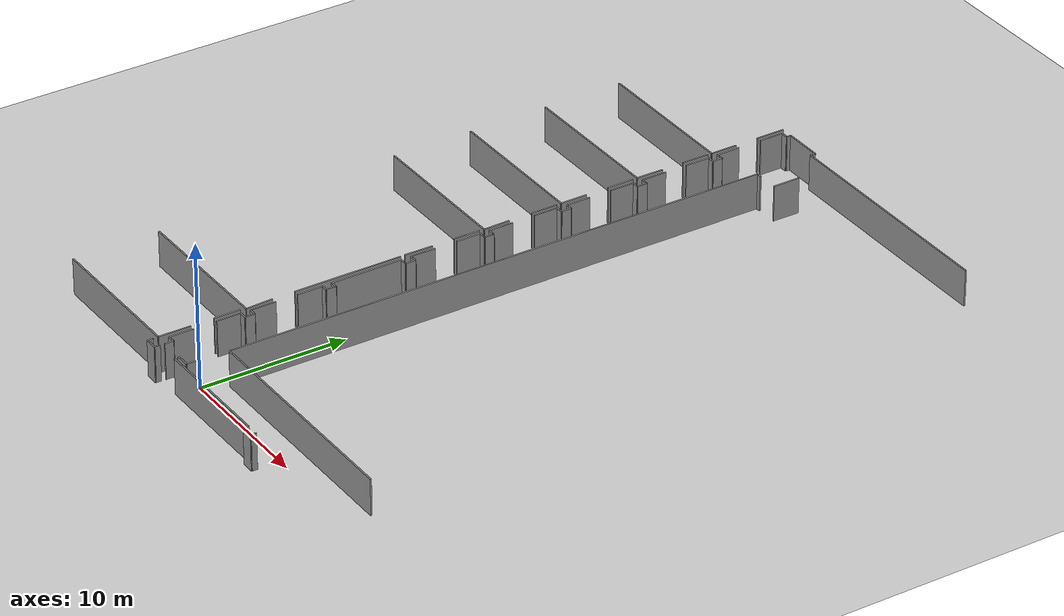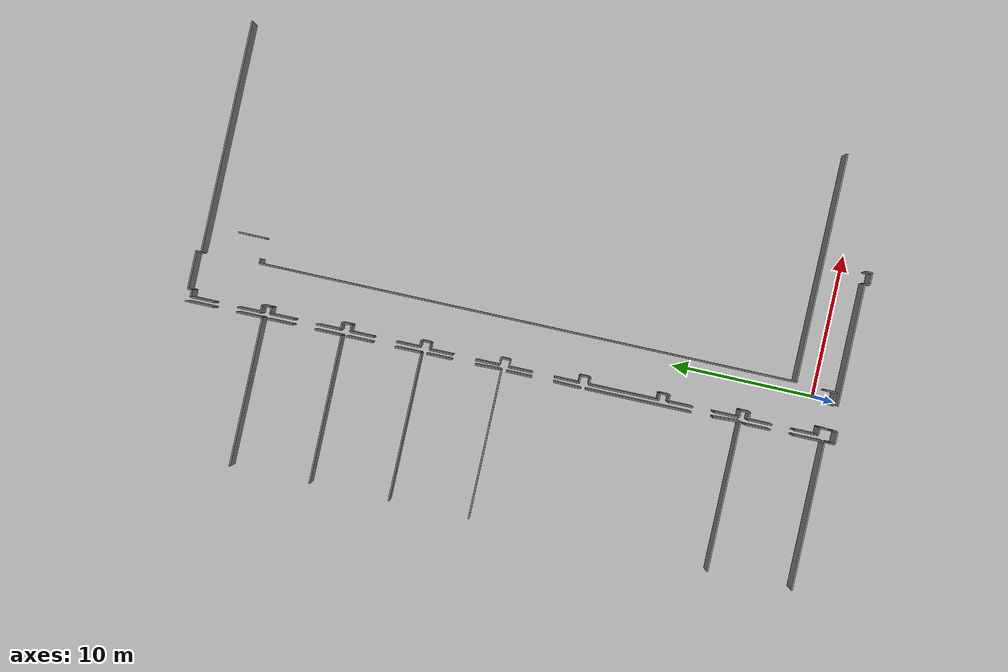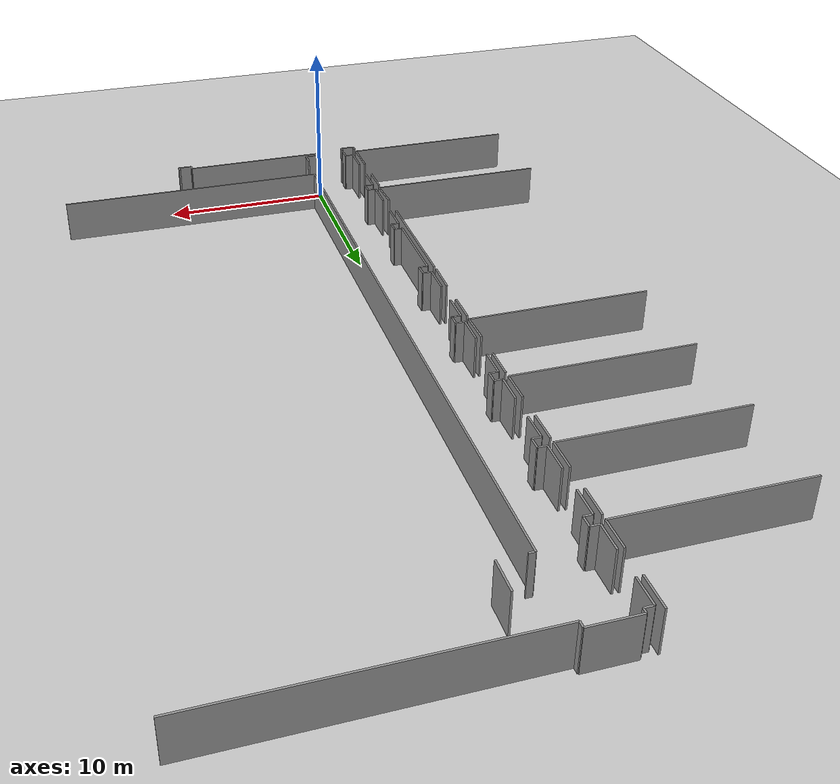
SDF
<sdf version="1.6">
 <world name="default">
  <model name="ground_plane">
   <static>1</static>
   <link name="link">
    <collision name="collision">
     <geometry><plane><normal>0 0 1</normal><size>100 100</size></plane></geometry>
     <surface><friction><ode><mu>100</mu><mu2>50</mu2></ode></friction></surface>
    </collision>
    <visual name="visual">
     <cast_shadows>0</cast_shadows>
     <geometry><plane><normal>0 0 1</normal><size>100 100</size></plane></geometry>
     <material>
      <script><uri>file://media/materials/scripts/gazebo.material</uri><name>Gazebo/Grey</name></script>
     </material>
    </visual>
   </link>
  </model>
  <model name="50015848">
   <static>1</static>
   <link name="Wall_527">
    <collision name="Wall_527_Collision">
     <geometry><box><size>0.373487938395 0.1 2.5</size></box></geometry>
     <pose>0.186743969197 0 1.25 0 0 0</pose>
    </collision>
    <visual name="Wall_527_Visual">
     <pose>0.186743969197 0 1.25 0 0 0</pose>
     <geometry><box><size>0.373487938395 0.1 2.5</size></box></geometry>
     <material>
      <script><uri>file://media/materials/scripts/gazebo.material</uri><name>Gazebo/Grey</name></script>
      <ambient>1 1 1 1</ambient>
     </material>
    </visual>
    <pose>128.944934633 -45.2679052833 0 0 0 -1.57079632679</pose>
   </link>
   <link name="Wall_528">
    <collision name="Wall_528_Collision">
     <geometry><box><size>0.844661241112 0.1 2.5</size></box></geometry>
     <pose>0.422330620556 0 1.25 0 0 0</pose>
    </collision>
    <visual name="Wall_528_Visual">
     <pose>0.422330620556 0 1.25 0 0 0</pose>
     <geometry><box><size>0.844661241112 0.1 2.5</size></box></geometry>
     <material>
      <script><uri>file://media/materials/scripts/gazebo.material</uri><name>Gazebo/Grey</name></script>
      <ambient>1 1 1 1</ambient>
     </material>
    </visual>
    <pose>128.944934633 -45.6413932217 0 0 0 0.0</pose>
   </link>
   <link name="Wall_529">
    <collision name="Wall_529_Collision">
     <geometry><box><size>0.362070168539 0.1 2.5</size></box></geometry>
     <pose>0.181035084269 0 1.25 0 0 0</pose>
    </collision>
    <visual name="Wall_529_Visual">
     <pose>0.181035084269 0 1.25 0 0 0</pose>
     <geometry><box><size>0.362070168539 0.1 2.5</size></box></geometry>
     <material>
      <script><uri>file://media/materials/scripts/gazebo.material</uri><name>Gazebo/Grey</name></script>
      <ambient>1 1 1 1</ambient>
     </material>
    </visual>
    <pose>129.789595874 -45.6413932217 0 0 0 1.57079632679</pose>
   </link>
   <link name="Wall_530">
    <collision name="Wall_530_Collision">
     <geometry><box><size>8.60849101485 0.1 2.5</size></box></geometry>
     <pose>4.30424550742 0 1.25 0 0 0</pose>
    </collision>
    <visual name="Wall_530_Visual">
     <pose>4.30424550742 0 1.25 0 0 0</pose>
     <geometry><box><size>8.60849101485 0.1 2.5</size></box></geometry>
     <material>
      <script><uri>file://media/materials/scripts/gazebo.material</uri><name>Gazebo/Grey</name></script>
      <ambient>1 1 1 1</ambient>
     </material>
    </visual>
    <pose>131.539305673 -45.2793230531 0 0 0 0.0</pose>
   </link>
   <link name="Wall_531">
    <collision name="Wall_531_Collision">
     <geometry><box><size>0.338980900608 0.1 2.5</size></box></geometry>
     <pose>0.169490450304 0 1.25 0 0 0</pose>
    </collision>
    <visual name="Wall_531_Visual">
     <pose>0.169490450304 0 1.25 0 0 0</pose>
     <geometry><box><size>0.338980900608 0.1 2.5</size></box></geometry>
     <material>
      <script><uri>file://media/materials/scripts/gazebo.material</uri><name>Gazebo/Grey</name></script>
      <ambient>1 1 1 1</ambient>
     </material>
    </visual>
    <pose>140.147796688 -45.2793230531 0 0 0 -1.57079632679</pose>
   </link>
   <link name="Wall_532">
    <collision name="Wall_532_Collision">
     <geometry><box><size>0.817512321677 0.1 2.5</size></box></geometry>
     <pose>0.408756160838 0 1.25 0 0 0</pose>
    </collision>
    <visual name="Wall_532_Visual">
     <pose>0.408756160838 0 1.25 0 0 0</pose>
     <geometry><box><size>0.817512321677 0.1 2.5</size></box></geometry>
     <material>
      <script><uri>file://media/materials/scripts/gazebo.material</uri><name>Gazebo/Grey</name></script>
      <ambient>1 1 1 1</ambient>
     </material>
    </visual>
    <pose>140.147796688 -45.6183039537 0 0 0 0.0</pose>
   </link>
   <link name="Wall_533">
    <collision name="Wall_533_Collision">
     <geometry><box><size>0.367144732919 0.1 2.5</size></box></geometry>
     <pose>0.18357236646 0 1.25 0 0 0</pose>
    </collision>
    <visual name="Wall_533_Visual">
     <pose>0.18357236646 0 1.25 0 0 0</pose>
     <geometry><box><size>0.367144732919 0.1 2.5</size></box></geometry>
     <material>
      <script><uri>file://media/materials/scripts/gazebo.material</uri><name>Gazebo/Grey</name></script>
      <ambient>1 1 1 1</ambient>
     </material>
    </visual>
    <pose>140.965309009 -45.6183039537 0 0 0 1.57079632679</pose>
   </link>
   <link name="Wall_658">
    <collision name="Wall_658_Collision">
     <geometry><box><size>0.71323002366 0.1 2.5</size></box></geometry>
     <pose>0.35661501183 0 1.25 0 0 0</pose>
    </collision>
    <visual name="Wall_658_Visual">
     <pose>0.35661501183 0 1.25 0 0 0</pose>
     <geometry><box><size>0.71323002366 0.1 2.5</size></box></geometry>
     <material>
      <script><uri>file://media/materials/scripts/gazebo.material</uri><name>Gazebo/Grey</name></script>
      <ambient>1 1 1 1</ambient>
     </material>
    </visual>
    <pose>132.421264962 -44.268977285 0 0 0 -1.57079632679</pose>
   </link>
   <link name="Wall_659">
    <collision name="Wall_659_Collision">
     <geometry><box><size>0.944376431186 0.1 2.5</size></box></geometry>
     <pose>0.472188215593 0 1.25 0 0 0</pose>
    </collision>
    <visual name="Wall_659_Visual">
     <pose>0.472188215593 0 1.25 0 0 0</pose>
     <geometry><box><size>0.944376431186 0.1 2.5</size></box></geometry>
     <material>
      <script><uri>file://media/materials/scripts/gazebo.material</uri><name>Gazebo/Grey</name></script>
      <ambient>1 1 1 1</ambient>
     </material>
    </visual>
    <pose>132.421264962 -44.9822073086 0 0 0 3.14159265359</pose>
   </link>
   <link name="Wall_660">
    <collision name="Wall_660_Collision">
     <geometry><box><size>0.591440478531 0.1 2.5</size></box></geometry>
     <pose>0.295720239266 0 1.25 0 0 0</pose>
    </collision>
    <visual name="Wall_660_Visual">
     <pose>0.295720239266 0 1.25 0 0 0</pose>
     <geometry><box><size>0.591440478531 0.1 2.5</size></box></geometry>
     <material>
      <script><uri>file://media/materials/scripts/gazebo.material</uri><name>Gazebo/Grey</name></script>
      <ambient>1 1 1 1</ambient>
     </material>
    </visual>
    <pose>129.822326815 -44.9822073086 0 0 0 1.57079632679</pose>
   </link>
   <link name="Wall_661">
    <collision name="Wall_661_Collision">
     <geometry><box><size>0.515575741045 0.1 2.5</size></box></geometry>
     <pose>0.257787870522 0 1.25 0 0 0</pose>
    </collision>
    <visual name="Wall_661_Visual">
     <pose>0.257787870522 0 1.25 0 0 0</pose>
     <geometry><box><size>0.515575741045 0.1 2.5</size></box></geometry>
     <material>
      <script><uri>file://media/materials/scripts/gazebo.material</uri><name>Gazebo/Grey</name></script>
      <ambient>1 1 1 1</ambient>
     </material>
    </visual>
    <pose>129.822326815 -44.3907668301 0 0 0 3.14159265359</pose>
   </link>
   <link name="Wall_662">
    <collision name="Wall_662_Collision">
     <geometry><box><size>1.64542750033 0.1 2.5</size></box></geometry>
     <pose>0.822713750167 0 1.25 0 0 0</pose>
    </collision>
    <visual name="Wall_662_Visual">
     <pose>0.822713750167 0 1.25 0 0 0</pose>
     <geometry><box><size>1.64542750033 0.1 2.5</size></box></geometry>
     <material>
      <script><uri>file://media/materials/scripts/gazebo.material</uri><name>Gazebo/Grey</name></script>
      <ambient>1 1 1 1</ambient>
     </material>
    </visual>
    <pose>129.306751074 -44.3907668301 0 0 0 1.57079632679</pose>
   </link>
   <link name="Wall_663">
    <collision name="Wall_663_Collision">
     <geometry><box><size>1.64974088006 0.1 2.5</size></box></geometry>
     <pose>0.824870440028 0 1.25 0 0 0</pose>
    </collision>
    <visual name="Wall_663_Visual">
     <pose>0.824870440028 0 1.25 0 0 0</pose>
     <geometry><box><size>1.64974088006 0.1 2.5</size></box></geometry>
     <material>
      <script><uri>file://media/materials/scripts/gazebo.material</uri><name>Gazebo/Grey</name></script>
      <ambient>1 1 1 1</ambient>
     </material>
    </visual>
    <pose>129.306751074 -41.150403745 0 0 0 1.57079632679</pose>
   </link>
   <link name="Wall_664">
    <collision name="Wall_664_Collision">
     <geometry><box><size>0.518366751454 0.1 2.5</size></box></geometry>
     <pose>0.259183375727 0 1.25 0 0 0</pose>
    </collision>
    <visual name="Wall_664_Visual">
     <pose>0.259183375727 0 1.25 0 0 0</pose>
     <geometry><box><size>0.518366751454 0.1 2.5</size></box></geometry>
     <material>
      <script><uri>file://media/materials/scripts/gazebo.material</uri><name>Gazebo/Grey</name></script>
      <ambient>1 1 1 1</ambient>
     </material>
    </visual>
    <pose>129.306751074 -39.500662865 0 0 0 0.0</pose>
   </link>
   <link name="Wall_665">
    <collision name="Wall_665_Collision">
     <geometry><box><size>0.652335251096 0.1 2.5</size></box></geometry>
     <pose>0.326167625548 0 1.25 0 0 0</pose>
    </collision>
    <visual name="Wall_665_Visual">
     <pose>0.326167625548 0 1.25 0 0 0</pose>
     <geometry><box><size>0.652335251096 0.1 2.5</size></box></geometry>
     <material>
      <script><uri>file://media/materials/scripts/gazebo.material</uri><name>Gazebo/Grey</name></script>
      <ambient>1 1 1 1</ambient>
     </material>
    </visual>
    <pose>129.825117825 -39.500662865 0 0 0 1.57079632679</pose>
   </link>
   <link name="Wall_666">
    <collision name="Wall_666_Collision">
     <geometry><box><size>0.498575950371 0.1 2.5</size></box></geometry>
     <pose>0.249287975185 0 1.25 0 0 0</pose>
    </collision>
    <visual name="Wall_666_Visual">
     <pose>0.249287975185 0 1.25 0 0 0</pose>
     <geometry><box><size>0.498575950371 0.1 2.5</size></box></geometry>
     <material>
      <script><uri>file://media/materials/scripts/gazebo.material</uri><name>Gazebo/Grey</name></script>
      <ambient>1 1 1 1</ambient>
     </material>
    </visual>
    <pose>129.825117825 -38.8483276139 0 0 0 3.14159265359</pose>
   </link>
   <link name="Wall_667">
    <collision name="Wall_667_Collision">
     <geometry><box><size>1.75275453698 0.1 2.5</size></box></geometry>
     <pose>0.876377268489 0 1.25 0 0 0</pose>
    </collision>
    <visual name="Wall_667_Visual">
     <pose>0.876377268489 0 1.25 0 0 0</pose>
     <geometry><box><size>1.75275453698 0.1 2.5</size></box></geometry>
     <material>
      <script><uri>file://media/materials/scripts/gazebo.material</uri><name>Gazebo/Grey</name></script>
      <ambient>1 1 1 1</ambient>
     </material>
    </visual>
    <pose>129.326541875 -38.8483276139 0 0 0 1.57079632679</pose>
   </link>
   <link name="Wall_668">
    <collision name="Wall_668_Collision">
     <geometry><box><size>1.7263668022 0.1 2.5</size></box></geometry>
     <pose>0.8631834011 0 1.25 0 0 0</pose>
    </collision>
    <visual name="Wall_668_Visual">
     <pose>0.8631834011 0 1.25 0 0 0</pose>
     <geometry><box><size>1.7263668022 0.1 2.5</size></box></geometry>
     <material>
      <script><uri>file://media/materials/scripts/gazebo.material</uri><name>Gazebo/Grey</name></script>
      <ambient>1 1 1 1</ambient>
     </material>
    </visual>
    <pose>129.326541875 -35.5940094767 0 0 0 1.57079632679</pose>
   </link>
   <link name="Wall_669">
    <collision name="Wall_669_Collision">
     <geometry><box><size>0.451636229852 0.1 2.5</size></box></geometry>
     <pose>0.225818114926 0 1.25 0 0 0</pose>
    </collision>
    <visual name="Wall_669_Visual">
     <pose>0.225818114926 0 1.25 0 0 0</pose>
     <geometry><box><size>0.451636229852 0.1 2.5</size></box></geometry>
     <material>
      <script><uri>file://media/materials/scripts/gazebo.material</uri><name>Gazebo/Grey</name></script>
      <ambient>1 1 1 1</ambient>
     </material>
    </visual>
    <pose>129.326541875 -33.8676426745 0 0 0 0.0</pose>
   </link>
   <link name="Wall_670">
    <collision name="Wall_670_Collision">
     <geometry><box><size>0.682021452721 0.1 2.5</size></box></geometry>
     <pose>0.34101072636 0 1.25 0 0 0</pose>
    </collision>
    <visual name="Wall_670_Visual">
     <pose>0.34101072636 0 1.25 0 0 0</pose>
     <geometry><box><size>0.682021452721 0.1 2.5</size></box></geometry>
     <material>
      <script><uri>file://media/materials/scripts/gazebo.material</uri><name>Gazebo/Grey</name></script>
      <ambient>1 1 1 1</ambient>
     </material>
    </visual>
    <pose>129.778178105 -33.8676426745 0 0 0 1.57079632679</pose>
   </link>
   <link name="Wall_671">
    <collision name="Wall_671_Collision">
     <geometry><box><size>0.478785149287 0.1 2.5</size></box></geometry>
     <pose>0.239392574644 0 1.25 0 0 0</pose>
    </collision>
    <visual name="Wall_671_Visual">
     <pose>0.239392574644 0 1.25 0 0 0</pose>
     <geometry><box><size>0.478785149287 0.1 2.5</size></box></geometry>
     <material>
      <script><uri>file://media/materials/scripts/gazebo.material</uri><name>Gazebo/Grey</name></script>
      <ambient>1 1 1 1</ambient>
     </material>
    </visual>
    <pose>129.778178105 -33.1856212218 0 0 0 3.14159265359</pose>
   </link>
   <link name="Wall_672">
    <collision name="Wall_672_Collision">
     <geometry><box><size>4.88680549829 0.1 2.5</size></box></geometry>
     <pose>2.44340274915 0 1.25 0 0 0</pose>
    </collision>
    <visual name="Wall_672_Visual">
     <pose>2.44340274915 0 1.25 0 0 0</pose>
     <geometry><box><size>4.88680549829 0.1 2.5</size></box></geometry>
     <material>
      <script><uri>file://media/materials/scripts/gazebo.material</uri><name>Gazebo/Grey</name></script>
      <ambient>1 1 1 1</ambient>
     </material>
    </visual>
    <pose>129.299392955 -33.1856212218 0 0 0 1.57079632679</pose>
   </link>
   <link name="Wall_673">
    <collision name="Wall_673_Collision">
     <geometry><box><size>0.501113232561 0.1 2.5</size></box></geometry>
     <pose>0.25055661628 0 1.25 0 0 0</pose>
    </collision>
    <visual name="Wall_673_Visual">
     <pose>0.25055661628 0 1.25 0 0 0</pose>
     <geometry><box><size>0.501113232561 0.1 2.5</size></box></geometry>
     <material>
      <script><uri>file://media/materials/scripts/gazebo.material</uri><name>Gazebo/Grey</name></script>
      <ambient>1 1 1 1</ambient>
     </material>
    </visual>
    <pose>129.299392955 -28.2988157235 0 0 0 0.0</pose>
   </link>
   <link name="Wall_674">
    <collision name="Wall_674_Collision">
     <geometry><box><size>0.691155668606 0.1 2.5</size></box></geometry>
     <pose>0.345577834303 0 1.25 0 0 0</pose>
    </collision>
    <visual name="Wall_674_Visual">
     <pose>0.345577834303 0 1.25 0 0 0</pose>
     <geometry><box><size>0.691155668606 0.1 2.5</size></box></geometry>
     <material>
      <script><uri>file://media/materials/scripts/gazebo.material</uri><name>Gazebo/Grey</name></script>
      <ambient>1 1 1 1</ambient>
     </material>
    </visual>
    <pose>129.800506188 -28.2988157235 0 0 0 1.57079632679</pose>
   </link>
   <link name="Wall_675">
    <collision name="Wall_675_Collision">
     <geometry><box><size>0.515575741045 0.1 2.5</size></box></geometry>
     <pose>0.257787870522 0 1.25 0 0 0</pose>
    </collision>
    <visual name="Wall_675_Visual">
     <pose>0.257787870522 0 1.25 0 0 0</pose>
     <geometry><box><size>0.515575741045 0.1 2.5</size></box></geometry>
     <material>
      <script><uri>file://media/materials/scripts/gazebo.material</uri><name>Gazebo/Grey</name></script>
      <ambient>1 1 1 1</ambient>
     </material>
    </visual>
    <pose>129.800506188 -27.6076600549 0 0 0 3.14159265359</pose>
   </link>
   <link name="Wall_676">
    <collision name="Wall_676_Collision">
     <geometry><box><size>1.71900868385 0.1 2.5</size></box></geometry>
     <pose>0.859504341924 0 1.25 0 0 0</pose>
    </collision>
    <visual name="Wall_676_Visual">
     <pose>0.859504341924 0 1.25 0 0 0</pose>
     <geometry><box><size>1.71900868385 0.1 2.5</size></box></geometry>
     <material>
      <script><uri>file://media/materials/scripts/gazebo.material</uri><name>Gazebo/Grey</name></script>
      <ambient>1 1 1 1</ambient>
     </material>
    </visual>
    <pose>129.284930447 -27.6076600549 0 0 0 1.57079632679</pose>
   </link>
   <link name="Wall_677">
    <collision name="Wall_677_Collision">
     <geometry><box><size>1.68297927675 0.1 2.5</size></box></geometry>
     <pose>0.841489638374 0 1.25 0 0 0</pose>
    </collision>
    <visual name="Wall_677_Visual">
     <pose>0.841489638374 0 1.25 0 0 0</pose>
     <geometry><box><size>1.68297927675 0.1 2.5</size></box></geometry>
     <material>
      <script><uri>file://media/materials/scripts/gazebo.material</uri><name>Gazebo/Grey</name></script>
      <ambient>1 1 1 1</ambient>
     </material>
    </visual>
    <pose>129.284930447 -24.3510583638 0 0 0 1.57079632679</pose>
   </link>
   <link name="Wall_678">
    <collision name="Wall_678_Collision">
     <geometry><box><size>0.515575741045 0.1 2.5</size></box></geometry>
     <pose>0.257787870522 0 1.25 0 0 0</pose>
    </collision>
    <visual name="Wall_678_Visual">
     <pose>0.257787870522 0 1.25 0 0 0</pose>
     <geometry><box><size>0.515575741045 0.1 2.5</size></box></geometry>
     <material>
      <script><uri>file://media/materials/scripts/gazebo.material</uri><name>Gazebo/Grey</name></script>
      <ambient>1 1 1 1</ambient>
     </material>
    </visual>
    <pose>129.284930447 -22.6680790871 0 0 0 0.0</pose>
   </link>
   <link name="Wall_679">
    <collision name="Wall_679_Collision">
     <geometry><box><size>0.654618805067 0.1 2.5</size></box></geometry>
     <pose>0.327309402533 0 1.25 0 0 0</pose>
    </collision>
    <visual name="Wall_679_Visual">
     <pose>0.327309402533 0 1.25 0 0 0</pose>
     <geometry><box><size>0.654618805067 0.1 2.5</size></box></geometry>
     <material>
      <script><uri>file://media/materials/scripts/gazebo.material</uri><name>Gazebo/Grey</name></script>
      <ambient>1 1 1 1</ambient>
     </material>
    </visual>
    <pose>129.800506188 -22.6680790871 0 0 0 1.57079632679</pose>
   </link>
   <link name="Wall_680">
    <collision name="Wall_680_Collision">
     <geometry><box><size>0.515575741045 0.1 2.5</size></box></geometry>
     <pose>0.257787870522 0 1.25 0 0 0</pose>
    </collision>
    <visual name="Wall_680_Visual">
     <pose>0.257787870522 0 1.25 0 0 0</pose>
     <geometry><box><size>0.515575741045 0.1 2.5</size></box></geometry>
     <material>
      <script><uri>file://media/materials/scripts/gazebo.material</uri><name>Gazebo/Grey</name></script>
      <ambient>1 1 1 1</ambient>
     </material>
    </visual>
    <pose>129.800506188 -22.013460282 0 0 0 3.14159265359</pose>
   </link>
   <link name="Wall_681">
    <collision name="Wall_681_Collision">
     <geometry><box><size>1.68932248222 0.1 2.5</size></box></geometry>
     <pose>0.844661241112 0 1.25 0 0 0</pose>
    </collision>
    <visual name="Wall_681_Visual">
     <pose>0.844661241112 0 1.25 0 0 0</pose>
     <geometry><box><size>1.68932248222 0.1 2.5</size></box></geometry>
     <material>
      <script><uri>file://media/materials/scripts/gazebo.material</uri><name>Gazebo/Grey</name></script>
      <ambient>1 1 1 1</ambient>
     </material>
    </visual>
    <pose>129.284930447 -22.013460282 0 0 0 1.57079632679</pose>
   </link>
   <link name="Wall_682">
    <collision name="Wall_682_Collision">
     <geometry><box><size>1.65253189047 0.1 2.5</size></box></geometry>
     <pose>0.826265945233 0 1.25 0 0 0</pose>
    </collision>
    <visual name="Wall_682_Visual">
     <pose>0.826265945233 0 1.25 0 0 0</pose>
     <geometry><box><size>1.65253189047 0.1 2.5</size></box></geometry>
     <material>
      <script><uri>file://media/materials/scripts/gazebo.material</uri><name>Gazebo/Grey</name></script>
      <ambient>1 1 1 1</ambient>
     </material>
    </visual>
    <pose>129.284930447 -18.7411274413 0 0 0 1.57079632679</pose>
   </link>
   <link name="Wall_683">
    <collision name="Wall_683_Collision">
     <geometry><box><size>0.495784939962 0.1 2.5</size></box></geometry>
     <pose>0.247892469981 0 1.25 0 0 0</pose>
    </collision>
    <visual name="Wall_683_Visual">
     <pose>0.247892469981 0 1.25 0 0 0</pose>
     <geometry><box><size>0.495784939962 0.1 2.5</size></box></geometry>
     <material>
      <script><uri>file://media/materials/scripts/gazebo.material</uri><name>Gazebo/Grey</name></script>
      <ambient>1 1 1 1</ambient>
     </material>
    </visual>
    <pose>129.284930447 -17.0885955509 0 0 0 0.0</pose>
   </link>
   <link name="Wall_684">
    <collision name="Wall_684_Collision">
     <geometry><box><size>0.681260268064 0.1 2.5</size></box></geometry>
     <pose>0.340630134032 0 1.25 0 0 0</pose>
    </collision>
    <visual name="Wall_684_Visual">
     <pose>0.340630134032 0 1.25 0 0 0</pose>
     <geometry><box><size>0.681260268064 0.1 2.5</size></box></geometry>
     <material>
      <script><uri>file://media/materials/scripts/gazebo.material</uri><name>Gazebo/Grey</name></script>
      <ambient>1 1 1 1</ambient>
     </material>
    </visual>
    <pose>129.780715387 -17.0885955509 0 0 0 1.57079632679</pose>
   </link>
   <link name="Wall_685">
    <collision name="Wall_685_Collision">
     <geometry><box><size>0.466859922994 0.1 2.5</size></box></geometry>
     <pose>0.233429961497 0 1.25 0 0 0</pose>
    </collision>
    <visual name="Wall_685_Visual">
     <pose>0.233429961497 0 1.25 0 0 0</pose>
     <geometry><box><size>0.466859922994 0.1 2.5</size></box></geometry>
     <material>
      <script><uri>file://media/materials/scripts/gazebo.material</uri><name>Gazebo/Grey</name></script>
      <ambient>1 1 1 1</ambient>
     </material>
    </visual>
    <pose>129.780715387 -16.4073352828 0 0 0 3.14159265359</pose>
   </link>
   <link name="Wall_686">
    <collision name="Wall_686_Collision">
     <geometry><box><size>1.6649645732 0.1 2.5</size></box></geometry>
     <pose>0.832482286599 0 1.25 0 0 0</pose>
    </collision>
    <visual name="Wall_686_Visual">
     <pose>0.832482286599 0 1.25 0 0 0</pose>
     <geometry><box><size>1.6649645732 0.1 2.5</size></box></geometry>
     <material>
      <script><uri>file://media/materials/scripts/gazebo.material</uri><name>Gazebo/Grey</name></script>
      <ambient>1 1 1 1</ambient>
     </material>
    </visual>
    <pose>129.313855464 -16.4073352828 0 0 0 1.57079632679</pose>
   </link>
   <link name="Wall_687">
    <collision name="Wall_687_Collision">
     <geometry><box><size>1.66521830142 0.1 2.5</size></box></geometry>
     <pose>0.832609150708 0 1.25 0 0 0</pose>
    </collision>
    <visual name="Wall_687_Visual">
     <pose>0.832609150708 0 1.25 0 0 0</pose>
     <geometry><box><size>1.66521830142 0.1 2.5</size></box></geometry>
     <material>
      <script><uri>file://media/materials/scripts/gazebo.material</uri><name>Gazebo/Grey</name></script>
      <ambient>1 1 1 1</ambient>
     </material>
    </visual>
    <pose>129.313855464 -13.1781362394 0 0 0 1.57079632679</pose>
   </link>
   <link name="Wall_688">
    <collision name="Wall_688_Collision">
     <geometry><box><size>0.491979016676 0.1 2.5</size></box></geometry>
     <pose>0.245989508338 0 1.25 0 0 0</pose>
    </collision>
    <visual name="Wall_688_Visual">
     <pose>0.245989508338 0 1.25 0 0 0</pose>
     <geometry><box><size>0.491979016676 0.1 2.5</size></box></geometry>
     <material>
      <script><uri>file://media/materials/scripts/gazebo.material</uri><name>Gazebo/Grey</name></script>
      <ambient>1 1 1 1</ambient>
     </material>
    </visual>
    <pose>129.313855464 -11.512917938 0 0 0 0.0</pose>
   </link>
   <link name="Wall_689">
    <collision name="Wall_689_Collision">
     <geometry><box><size>0.681260268064 0.1 2.5</size></box></geometry>
     <pose>0.340630134032 0 1.25 0 0 0</pose>
    </collision>
    <visual name="Wall_689_Visual">
     <pose>0.340630134032 0 1.25 0 0 0</pose>
     <geometry><box><size>0.681260268064 0.1 2.5</size></box></geometry>
     <material>
      <script><uri>file://media/materials/scripts/gazebo.material</uri><name>Gazebo/Grey</name></script>
      <ambient>1 1 1 1</ambient>
     </material>
    </visual>
    <pose>129.80583448 -11.512917938 0 0 0 1.57079632679</pose>
   </link>
   <link name="Wall_690">
    <collision name="Wall_690_Collision">
     <geometry><box><size>0.491979016676 0.1 2.5</size></box></geometry>
     <pose>0.245989508338 0 1.25 0 0 0</pose>
    </collision>
    <visual name="Wall_690_Visual">
     <pose>0.245989508338 0 1.25 0 0 0</pose>
     <geometry><box><size>0.491979016676 0.1 2.5</size></box></geometry>
     <material>
      <script><uri>file://media/materials/scripts/gazebo.material</uri><name>Gazebo/Grey</name></script>
      <ambient>1 1 1 1</ambient>
     </material>
    </visual>
    <pose>129.80583448 -10.8316576699 0 0 0 3.14159265359</pose>
   </link>
   <link name="Wall_691">
    <collision name="Wall_691_Collision">
     <geometry><box><size>1.71545648878 0.1 2.5</size></box></geometry>
     <pose>0.857728244391 0 1.25 0 0 0</pose>
    </collision>
    <visual name="Wall_691_Visual">
     <pose>0.857728244391 0 1.25 0 0 0</pose>
     <geometry><box><size>1.71545648878 0.1 2.5</size></box></geometry>
     <material>
      <script><uri>file://media/materials/scripts/gazebo.material</uri><name>Gazebo/Grey</name></script>
      <ambient>1 1 1 1</ambient>
     </material>
    </visual>
    <pose>129.313855464 -10.8316576699 0 0 0 1.57079632679</pose>
   </link>
   <link name="Wall_692">
    <collision name="Wall_692_Collision">
     <geometry><box><size>1.70175516496 0.1 2.5</size></box></geometry>
     <pose>0.850877582478 0 1.25 0 0 0</pose>
    </collision>
    <visual name="Wall_692_Visual">
     <pose>0.850877582478 0 1.25 0 0 0</pose>
     <geometry><box><size>1.70175516496 0.1 2.5</size></box></geometry>
     <material>
      <script><uri>file://media/materials/scripts/gazebo.material</uri><name>Gazebo/Grey</name></script>
      <ambient>1 1 1 1</ambient>
     </material>
    </visual>
    <pose>129.313855464 -7.58089172783 0 0 0 1.57079632679</pose>
   </link>
   <link name="Wall_693">
    <collision name="Wall_693_Collision">
     <geometry><box><size>0.479546333944 0.1 2.5</size></box></geometry>
     <pose>0.239773166972 0 1.25 0 0 0</pose>
    </collision>
    <visual name="Wall_693_Visual">
     <pose>0.239773166972 0 1.25 0 0 0</pose>
     <geometry><box><size>0.479546333944 0.1 2.5</size></box></geometry>
     <material>
      <script><uri>file://media/materials/scripts/gazebo.material</uri><name>Gazebo/Grey</name></script>
      <ambient>1 1 1 1</ambient>
     </material>
    </visual>
    <pose>129.313855464 -5.87913656287 0 0 0 0.0</pose>
   </link>
   <link name="Wall_694">
    <collision name="Wall_694_Collision">
     <geometry><box><size>0.660962010542 0.1 2.5</size></box></geometry>
     <pose>0.330481005271 0 1.25 0 0 0</pose>
    </collision>
    <visual name="Wall_694_Visual">
     <pose>0.330481005271 0 1.25 0 0 0</pose>
     <geometry><box><size>0.660962010542 0.1 2.5</size></box></geometry>
     <material>
      <script><uri>file://media/materials/scripts/gazebo.material</uri><name>Gazebo/Grey</name></script>
      <ambient>1 1 1 1</ambient>
     </material>
    </visual>
    <pose>129.793401798 -5.87913656287 0 0 0 1.57079632679</pose>
   </link>
   <link name="Wall_695">
    <collision name="Wall_695_Collision">
     <geometry><box><size>0.504665427627 0.1 2.5</size></box></geometry>
     <pose>0.252332713814 0 1.25 0 0 0</pose>
    </collision>
    <visual name="Wall_695_Visual">
     <pose>0.252332713814 0 1.25 0 0 0</pose>
     <geometry><box><size>0.504665427627 0.1 2.5</size></box></geometry>
     <material>
      <script><uri>file://media/materials/scripts/gazebo.material</uri><name>Gazebo/Grey</name></script>
      <ambient>1 1 1 1</ambient>
     </material>
    </visual>
    <pose>129.793401798 -5.21817455233 0 0 0 3.14159265359</pose>
   </link>
   <link name="Wall_696">
    <collision name="Wall_696_Collision">
     <geometry><box><size>1.62741279678 0.1 2.5</size></box></geometry>
     <pose>0.813706398391 0 1.25 0 0 0</pose>
    </collision>
    <visual name="Wall_696_Visual">
     <pose>0.813706398391 0 1.25 0 0 0</pose>
     <geometry><box><size>1.62741279678 0.1 2.5</size></box></geometry>
     <material>
      <script><uri>file://media/materials/scripts/gazebo.material</uri><name>Gazebo/Grey</name></script>
      <ambient>1 1 1 1</ambient>
     </material>
    </visual>
    <pose>129.28873637 -5.21817455233 0 0 0 1.57079632679</pose>
   </link>
   <link name="Wall_697">
    <collision name="Wall_697_Collision">
     <geometry><box><size>1.65253189047 0.1 2.5</size></box></geometry>
     <pose>0.826265945233 0 1.25 0 0 0</pose>
    </collision>
    <visual name="Wall_697_Visual">
     <pose>0.826265945233 0 1.25 0 0 0</pose>
     <geometry><box><size>1.65253189047 0.1 2.5</size></box></geometry>
     <material>
      <script><uri>file://media/materials/scripts/gazebo.material</uri><name>Gazebo/Grey</name></script>
      <ambient>1 1 1 1</ambient>
     </material>
    </visual>
    <pose>129.28873637 -1.95091627603 0 0 0 1.57079632679</pose>
   </link>
   <link name="Wall_698">
    <collision name="Wall_698_Collision">
     <geometry><box><size>0.504665427627 0.1 2.5</size></box></geometry>
     <pose>0.252332713814 0 1.25 0 0 0</pose>
    </collision>
    <visual name="Wall_698_Visual">
     <pose>0.252332713814 0 1.25 0 0 0</pose>
     <geometry><box><size>0.504665427627 0.1 2.5</size></box></geometry>
     <material>
      <script><uri>file://media/materials/scripts/gazebo.material</uri><name>Gazebo/Grey</name></script>
      <ambient>1 1 1 1</ambient>
     </material>
    </visual>
    <pose>129.28873637 -0.298384385565 0 0 0 0.0</pose>
   </link>
   <link name="Wall_699">
    <collision name="Wall_699_Collision">
     <geometry><box><size>0.290265082557 0.1 2.5</size></box></geometry>
     <pose>0.145132541278 0 1.25 0 0 0</pose>
    </collision>
    <visual name="Wall_699_Visual">
     <pose>0.145132541278 0 1.25 0 0 0</pose>
     <geometry><box><size>0.290265082557 0.1 2.5</size></box></geometry>
     <material>
      <script><uri>file://media/materials/scripts/gazebo.material</uri><name>Gazebo/Grey</name></script>
      <ambient>1 1 1 1</ambient>
     </material>
    </visual>
    <pose>129.793401798 -0.298384385565 0 0 0 1.57079632679</pose>
   </link>
   <link name="Wall_700">
    <collision name="Wall_700_Collision">
     <geometry><box><size>2.6468927808 0.1 2.5</size></box></geometry>
     <pose>1.3234463904 0 1.25 0 0 0</pose>
    </collision>
    <visual name="Wall_700_Visual">
     <pose>1.3234463904 0 1.25 0 0 0</pose>
     <geometry><box><size>2.6468927808 0.1 2.5</size></box></geometry>
     <material>
      <script><uri>file://media/materials/scripts/gazebo.material</uri><name>Gazebo/Grey</name></script>
      <ambient>1 1 1 1</ambient>
     </material>
    </visual>
    <pose>129.793401798 -0.00811930300859 0 0 0 0.0</pose>
   </link>
   <link name="Wall_701">
    <collision name="Wall_701_Collision">
     <geometry><box><size>0.352682224435 0.1 2.5</size></box></geometry>
     <pose>0.176341112218 0 1.25 0 0 0</pose>
    </collision>
    <visual name="Wall_701_Visual">
     <pose>0.176341112218 0 1.25 0 0 0</pose>
     <geometry><box><size>0.352682224435 0.1 2.5</size></box></geometry>
     <material>
      <script><uri>file://media/materials/scripts/gazebo.material</uri><name>Gazebo/Grey</name></script>
      <ambient>1 1 1 1</ambient>
     </material>
    </visual>
    <pose>132.440294578 -0.00811930300859 0 0 0 -1.57079632679</pose>
   </link>
   <link name="Wall_702">
    <collision name="Wall_702_Collision">
     <geometry><box><size>16.2325165399 0.1 2.5</size></box></geometry>
     <pose>8.11625826995 0 1.25 0 0 0</pose>
    </collision>
    <visual name="Wall_702_Visual">
     <pose>8.11625826995 0 1.25 0 0 0</pose>
     <geometry><box><size>16.2325165399 0.1 2.5</size></box></geometry>
     <material>
      <script><uri>file://media/materials/scripts/gazebo.material</uri><name>Gazebo/Grey</name></script>
      <ambient>1 1 1 1</ambient>
     </material>
    </visual>
    <pose>132.440294578 -0.360801527444 0 0 0 0.0</pose>
   </link>
   <link name="Wall_746">
    <collision name="Wall_746_Collision">
     <geometry><box><size>1.85678310678 0.1 2.5</size></box></geometry>
     <pose>0.928391553388 0 1.25 0 0 0</pose>
    </collision>
    <visual name="Wall_746_Visual">
     <pose>0.928391553388 0 1.25 0 0 0</pose>
     <geometry><box><size>1.85678310678 0.1 2.5</size></box></geometry>
     <material>
      <script><uri>file://media/materials/scripts/gazebo.material</uri><name>Gazebo/Grey</name></script>
      <ambient>1 1 1 1</ambient>
     </material>
    </visual>
    <pose>134.328032528 -2.57077431509 0 0 0 -1.57079632679</pose>
   </link>
   <link name="Wall_747">
    <collision name="Wall_747_Collision">
     <geometry><box><size>0.333906336228 0.1 2.5</size></box></geometry>
     <pose>0.166953168114 0 1.25 0 0 0</pose>
    </collision>
    <visual name="Wall_747_Visual">
     <pose>0.166953168114 0 1.25 0 0 0</pose>
     <geometry><box><size>0.333906336228 0.1 2.5</size></box></geometry>
     <material>
      <script><uri>file://media/materials/scripts/gazebo.material</uri><name>Gazebo/Grey</name></script>
      <ambient>1 1 1 1</ambient>
     </material>
    </visual>
    <pose>132.882796592 -4.42755742187 0 0 0 3.14159265359</pose>
   </link>
   <link name="Wall_748">
    <collision name="Wall_748_Collision">
     <geometry><box><size>37.7283712551 0.1 2.5</size></box></geometry>
     <pose>18.8641856276 0 1.25 0 0 0</pose>
    </collision>
    <visual name="Wall_748_Visual">
     <pose>18.8641856276 0 1.25 0 0 0</pose>
     <geometry><box><size>37.7283712551 0.1 2.5</size></box></geometry>
     <material>
      <script><uri>file://media/materials/scripts/gazebo.material</uri><name>Gazebo/Grey</name></script>
      <ambient>1 1 1 1</ambient>
     </material>
    </visual>
    <pose>132.548890256 -4.42755742187 0 0 0 -1.57079632679</pose>
   </link>
   <link name="Wall_749">
    <collision name="Wall_749_Collision">
     <geometry><box><size>16.040500244 0.1 2.5</size></box></geometry>
     <pose>8.020250122 0 1.25 0 0 0</pose>
    </collision>
    <visual name="Wall_749_Visual">
     <pose>8.020250122 0 1.25 0 0 0</pose>
     <geometry><box><size>16.040500244 0.1 2.5</size></box></geometry>
     <material>
      <script><uri>file://media/materials/scripts/gazebo.material</uri><name>Gazebo/Grey</name></script>
      <ambient>1 1 1 1</ambient>
     </material>
    </visual>
    <pose>132.548890256 -42.155928677 0 0 0 -0.00264160476366</pose>
   </link>
   <link name="Wall_750">
    <collision name="Wall_750_Collision">
     <geometry><box><size>10.4449758641 0.1 2.5</size></box></geometry>
     <pose>5.22248793205 0 1.25 0 0 0</pose>
    </collision>
    <visual name="Wall_750_Visual">
     <pose>5.22248793205 0 1.25 0 0 0</pose>
     <geometry><box><size>10.4449758641 0.1 2.5</size></box></geometry>
     <material>
      <script><uri>file://media/materials/scripts/gazebo.material</uri><name>Gazebo/Grey</name></script>
      <ambient>1 1 1 1</ambient>
     </material>
    </visual>
    <pose>128.965740347 -5.41938103001 0 0 0 3.14159265359</pose>
   </link>
   <link name="Wall_756">
    <collision name="Wall_756_Collision">
     <geometry><box><size>1.94990136315 0.1 2.5</size></box></geometry>
     <pose>0.974950681577 0 1.25 0 0 0</pose>
    </collision>
    <visual name="Wall_756_Visual">
     <pose>0.974950681577 0 1.25 0 0 0</pose>
     <geometry><box><size>1.94990136315 0.1 2.5</size></box></geometry>
     <material>
      <script><uri>file://media/materials/scripts/gazebo.material</uri><name>Gazebo/Grey</name></script>
      <ambient>1 1 1 1</ambient>
     </material>
    </visual>
    <pose>128.953561393 -0.00888048766564 0 0 0 -1.57079632679</pose>
   </link>
   <link name="Wall_757">
    <collision name="Wall_757_Collision">
     <geometry><box><size>1.83018216668 0.1 2.5</size></box></geometry>
     <pose>0.915091083339 0 1.25 0 0 0</pose>
    </collision>
    <visual name="Wall_757_Visual">
     <pose>0.915091083339 0 1.25 0 0 0</pose>
     <geometry><box><size>1.83018216668 0.1 2.5</size></box></geometry>
     <material>
      <script><uri>file://media/materials/scripts/gazebo.material</uri><name>Gazebo/Grey</name></script>
      <ambient>1 1 1 1</ambient>
     </material>
    </visual>
    <pose>128.953561393 -3.58923938623 0 0 0 -1.5641417737</pose>
   </link>
   <link name="Wall_763">
    <collision name="Wall_763_Collision">
     <geometry><box><size>1.83191774131 0.1 2.5</size></box></geometry>
     <pose>0.915958870656 0 1.25 0 0 0</pose>
    </collision>
    <visual name="Wall_763_Visual">
     <pose>0.915958870656 0 1.25 0 0 0</pose>
     <geometry><box><size>1.83191774131 0.1 2.5</size></box></geometry>
     <material>
      <script><uri>file://media/materials/scripts/gazebo.material</uri><name>Gazebo/Grey</name></script>
      <ambient>1 1 1 1</ambient>
     </material>
    </visual>
    <pose>128.944934633 -5.73476520625 0 0 0 -1.57079632679</pose>
   </link>
   <link name="Wall_764">
    <collision name="Wall_764_Collision">
     <geometry><box><size>1.87961864649 0.1 2.5</size></box></geometry>
     <pose>0.939809323243 0 1.25 0 0 0</pose>
    </collision>
    <visual name="Wall_764_Visual">
     <pose>0.939809323243 0 1.25 0 0 0</pose>
     <geometry><box><size>1.87961864649 0.1 2.5</size></box></geometry>
     <material>
      <script><uri>file://media/materials/scripts/gazebo.material</uri><name>Gazebo/Grey</name></script>
      <ambient>1 1 1 1</ambient>
     </material>
    </visual>
    <pose>128.944934633 -9.10351477015 0 0 0 -1.57079632679</pose>
   </link>
   <link name="Wall_765">
    <collision name="Wall_765_Collision">
     <geometry><box><size>10.4023994327 0.1 2.5</size></box></geometry>
     <pose>5.20119971636 0 1.25 0 0 0</pose>
    </collision>
    <visual name="Wall_765_Visual">
     <pose>5.20119971636 0 1.25 0 0 0</pose>
     <geometry><box><size>10.4023994327 0.1 2.5</size></box></geometry>
     <material>
      <script><uri>file://media/materials/scripts/gazebo.material</uri><name>Gazebo/Grey</name></script>
      <ambient>1 1 1 1</ambient>
     </material>
    </visual>
    <pose>128.944934633 -10.9831334166 0 0 0 -3.13849495141</pose>
   </link>
   <link name="Wall_766">
    <collision name="Wall_766_Collision">
     <geometry><box><size>10.4322894532 0.1 2.5</size></box></geometry>
     <pose>5.21614472658 0 1.25 0 0 0</pose>
    </collision>
    <visual name="Wall_766_Visual">
     <pose>5.21614472658 0 1.25 0 0 0</pose>
     <geometry><box><size>10.4322894532 0.1 2.5</size></box></geometry>
     <material>
      <script><uri>file://media/materials/scripts/gazebo.material</uri><name>Gazebo/Grey</name></script>
      <ambient>1 1 1 1</ambient>
     </material>
    </visual>
    <pose>128.960665783 -16.5841838515 0 0 0 3.14159265359</pose>
   </link>
   <link name="Wall_772">
    <collision name="Wall_772_Collision">
     <geometry><box><size>1.82227606899 0.1 2.5</size></box></geometry>
     <pose>0.911138034494 0 1.25 0 0 0</pose>
    </collision>
    <visual name="Wall_772_Visual">
     <pose>0.911138034494 0 1.25 0 0 0</pose>
     <geometry><box><size>1.82227606899 0.1 2.5</size></box></geometry>
     <material>
      <script><uri>file://media/materials/scripts/gazebo.material</uri><name>Gazebo/Grey</name></script>
      <ambient>1 1 1 1</ambient>
     </material>
    </visual>
    <pose>128.949248013 -11.3297261638 0 0 0 -1.57079632679</pose>
   </link>
   <link name="Wall_773">
    <collision name="Wall_773_Collision">
     <geometry><box><size>1.85453470089 0.1 2.5</size></box></geometry>
     <pose>0.927267350447 0 1.25 0 0 0</pose>
    </collision>
    <visual name="Wall_773_Visual">
     <pose>0.927267350447 0 1.25 0 0 0</pose>
     <geometry><box><size>1.85453470089 0.1 2.5</size></box></geometry>
     <material>
      <script><uri>file://media/materials/scripts/gazebo.material</uri><name>Gazebo/Grey</name></script>
      <ambient>1 1 1 1</ambient>
     </material>
    </visual>
    <pose>128.949248013 -14.7296842987 0 0 0 -1.56463961159</pose>
   </link>
   <link name="Wall_774">
    <collision name="Wall_774_Collision">
     <geometry><box><size>10.4744083375 0.1 2.5</size></box></geometry>
     <pose>5.23720416875 0 1.25 0 0 0</pose>
    </collision>
    <visual name="Wall_774_Visual">
     <pose>5.23720416875 0 1.25 0 0 0</pose>
     <geometry><box><size>10.4744083375 0.1 2.5</size></box></geometry>
     <material>
      <script><uri>file://media/materials/scripts/gazebo.material</uri><name>Gazebo/Grey</name></script>
      <ambient>1 1 1 1</ambient>
     </material>
    </visual>
    <pose>129.009381601 -22.2040101745 0 0 0 3.14159265359</pose>
   </link>
   <link name="Wall_780">
    <collision name="Wall_780_Collision">
     <geometry><box><size>1.80984338626 0.1 2.5</size></box></geometry>
     <pose>0.904921693128 0 1.25 0 0 0</pose>
    </collision>
    <visual name="Wall_780_Visual">
     <pose>0.904921693128 0 1.25 0 0 0</pose>
     <geometry><box><size>1.80984338626 0.1 2.5</size></box></geometry>
     <material>
      <script><uri>file://media/materials/scripts/gazebo.material</uri><name>Gazebo/Grey</name></script>
      <ambient>1 1 1 1</ambient>
     </material>
    </visual>
    <pose>128.96675526 -16.9345825219 0 0 0 -1.57079632679</pose>
   </link>
   <link name="Wall_781">
    <collision name="Wall_781_Collision">
     <geometry><box><size>1.83951607899 0.1 2.5</size></box></geometry>
     <pose>0.919758039496 0 1.25 0 0 0</pose>
    </collision>
    <visual name="Wall_781_Visual">
     <pose>0.919758039496 0 1.25 0 0 0</pose>
     <geometry><box><size>1.83951607899 0.1 2.5</size></box></geometry>
     <material>
      <script><uri>file://media/materials/scripts/gazebo.material</uri><name>Gazebo/Grey</name></script>
      <ambient>1 1 1 1</ambient>
     </material>
    </visual>
    <pose>128.96675526 -20.3649880431 0 0 0 -1.5476216685</pose>
   </link>
   <link name="Wall_789">
    <collision name="Wall_789_Collision">
     <geometry><box><size>1.81035084269 0.1 2.5</size></box></geometry>
     <pose>0.905175421347 0 1.25 0 0 0</pose>
    </collision>
    <visual name="Wall_789_Visual">
     <pose>0.905175421347 0 1.25 0 0 0</pose>
     <geometry><box><size>1.81035084269 0.1 2.5</size></box></geometry>
     <material>
      <script><uri>file://media/materials/scripts/gazebo.material</uri><name>Gazebo/Grey</name></script>
      <ambient>1 1 1 1</ambient>
     </material>
    </visual>
    <pose>128.968277629 -22.5399463365 0 0 0 -1.57079632679</pose>
   </link>
   <link name="Wall_790">
    <collision name="Wall_790_Collision">
     <geometry><box><size>1.94180420695 0.1 2.5</size></box></geometry>
     <pose>0.970902103475 0 1.25 0 0 0</pose>
    </collision>
    <visual name="Wall_790_Visual">
     <pose>0.970902103475 0 1.25 0 0 0</pose>
     <geometry><box><size>1.94180420695 0.1 2.5</size></box></geometry>
     <material>
      <script><uri>file://media/materials/scripts/gazebo.material</uri><name>Gazebo/Grey</name></script>
      <ambient>1 1 1 1</ambient>
     </material>
    </visual>
    <pose>128.968277629 -25.8823081656 0 0 0 -1.58765306769</pose>
   </link>
   <link name="Wall_791">
    <collision name="Wall_791_Collision">
     <geometry><box><size>10.5195719605 0.1 2.5</size></box></geometry>
     <pose>5.25978598025 0 1.25 0 0 0</pose>
    </collision>
    <visual name="Wall_791_Visual">
     <pose>5.25978598025 0 1.25 0 0 0</pose>
     <geometry><box><size>10.5195719605 0.1 2.5</size></box></geometry>
     <material>
      <script><uri>file://media/materials/scripts/gazebo.material</uri><name>Gazebo/Grey</name></script>
      <ambient>1 1 1 1</ambient>
     </material>
    </visual>
    <pose>129.054798952 -38.9787439185 0 0 0 3.14159265359</pose>
   </link>
   <link name="Wall_801">
    <collision name="Wall_801_Collision">
     <geometry><box><size>7.41368483149 0.1 2.5</size></box></geometry>
     <pose>3.70684241575 0 1.25 0 0 0</pose>
    </collision>
    <visual name="Wall_801_Visual">
     <pose>3.70684241575 0 1.25 0 0 0</pose>
     <geometry><box><size>7.41368483149 0.1 2.5</size></box></geometry>
     <material>
      <script><uri>file://media/materials/scripts/gazebo.material</uri><name>Gazebo/Grey</name></script>
      <ambient>1 1 1 1</ambient>
     </material>
    </visual>
    <pose>128.955844947 -28.1430265971 0 0 0 -1.57079632679</pose>
   </link>
   <link name="Wall_802">
    <collision name="Wall_802_Collision">
     <geometry><box><size>1.87892770263 0.1 2.5</size></box></geometry>
     <pose>0.939463851315 0 1.25 0 0 0</pose>
    </collision>
    <visual name="Wall_802_Visual">
     <pose>0.939463851315 0 1.25 0 0 0</pose>
     <geometry><box><size>1.87892770263 0.1 2.5</size></box></geometry>
     <material>
      <script><uri>file://media/materials/scripts/gazebo.material</uri><name>Gazebo/Grey</name></script>
      <ambient>1 1 1 1</ambient>
     </material>
    </visual>
    <pose>128.955844947 -37.1024237388 0 0 0 -1.51810680293</pose>
   </link>
   <link name="Wall_803">
    <collision name="Wall_803_Collision">
     <geometry><box><size>10.4092001852 0.1 2.5</size></box></geometry>
     <pose>5.20460009261 0 1.25 0 0 0</pose>
    </collision>
    <visual name="Wall_803_Visual">
     <pose>5.20460009261 0 1.25 0 0 0</pose>
     <geometry><box><size>10.4092001852 0.1 2.5</size></box></geometry>
     <material>
      <script><uri>file://media/materials/scripts/gazebo.material</uri><name>Gazebo/Grey</name></script>
      <ambient>1 1 1 1</ambient>
     </material>
    </visual>
    <pose>128.944427177 -44.9137006895 0 0 0 3.14159265359</pose>
   </link>
   <link name="Wall_809">
    <collision name="Wall_809_Collision">
     <geometry><box><size>1.7837093797 0.1 2.5</size></box></geometry>
     <pose>0.891854689849 0 1.25 0 0 0</pose>
    </collision>
    <visual name="Wall_809_Visual">
     <pose>0.891854689849 0 1.25 0 0 0</pose>
     <geometry><box><size>1.7837093797 0.1 2.5</size></box></geometry>
     <material>
      <script><uri>file://media/materials/scripts/gazebo.material</uri><name>Gazebo/Grey</name></script>
      <ambient>1 1 1 1</ambient>
     </material>
    </visual>
    <pose>128.949248013 -39.3448737385 0 0 0 -1.57079632679</pose>
   </link>
   <link name="Wall_810">
    <collision name="Wall_810_Collision">
     <geometry><box><size>2.19526184428 0.1 2.5</size></box></geometry>
     <pose>1.09763092214 0 1.25 0 0 0</pose>
    </collision>
    <visual name="Wall_810_Visual">
     <pose>1.09763092214 0 1.25 0 0 0</pose>
     <geometry><box><size>2.19526184428 0.1 2.5</size></box></geometry>
     <material>
      <script><uri>file://media/materials/scripts/gazebo.material</uri><name>Gazebo/Grey</name></script>
      <ambient>1 1 1 1</ambient>
     </material>
    </visual>
    <pose>128.949248013 -42.7184441386 0 0 0 -1.57299234731</pose>
   </link>
   <pose>-131.8 43.7717730528 0 0 0 0</pose>
  </model>
 </world>
</sdf>
